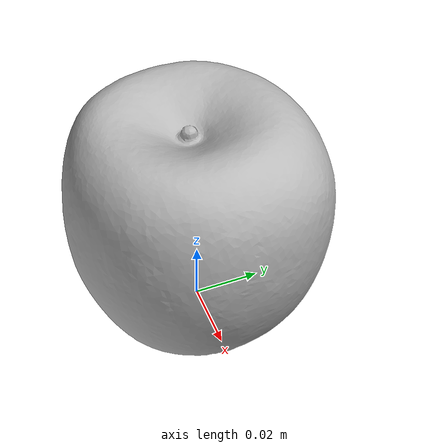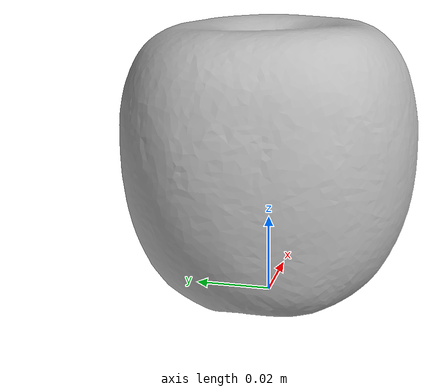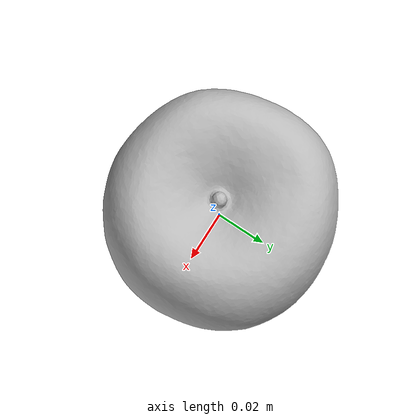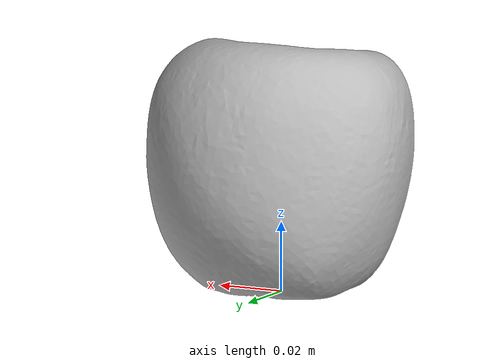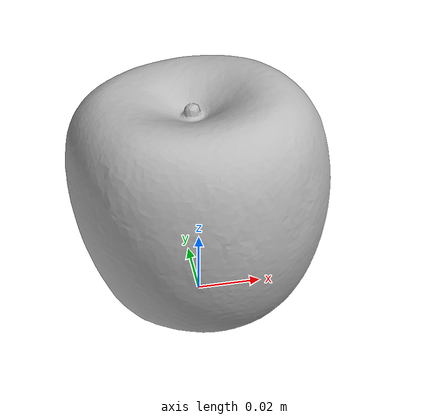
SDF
<?xml version="1.0"?>
<sdf version="1.6">
  <model name="apple">
    <link name="link">
      <inertial>
        <mass>1.131</mass>
        <inertia>
          <ixx>0.006288831</ixx>
          <ixy>0.0</ixy>
          <ixz>0.0</ixz>
          <iyy>0.006795802</iyy>
          <iyz>0.0</iyz>
          <izz>0.001303383</izz>
        </inertia>
        <pose>0 0 0 0 0 0</pose>
      </inertial>
      <collision name="collision">
        <geometry>
          <mesh>
            <uri>model://apple/meshes/collision.dae</uri>
          </mesh>
        </geometry>
      </collision>
      <visual name="visual">
        <geometry>
          <mesh>
            <uri>model://apple/meshes/textured.dae</uri>
          </mesh>
        </geometry>
      </visual>
    </link>
  </model>
</sdf>
